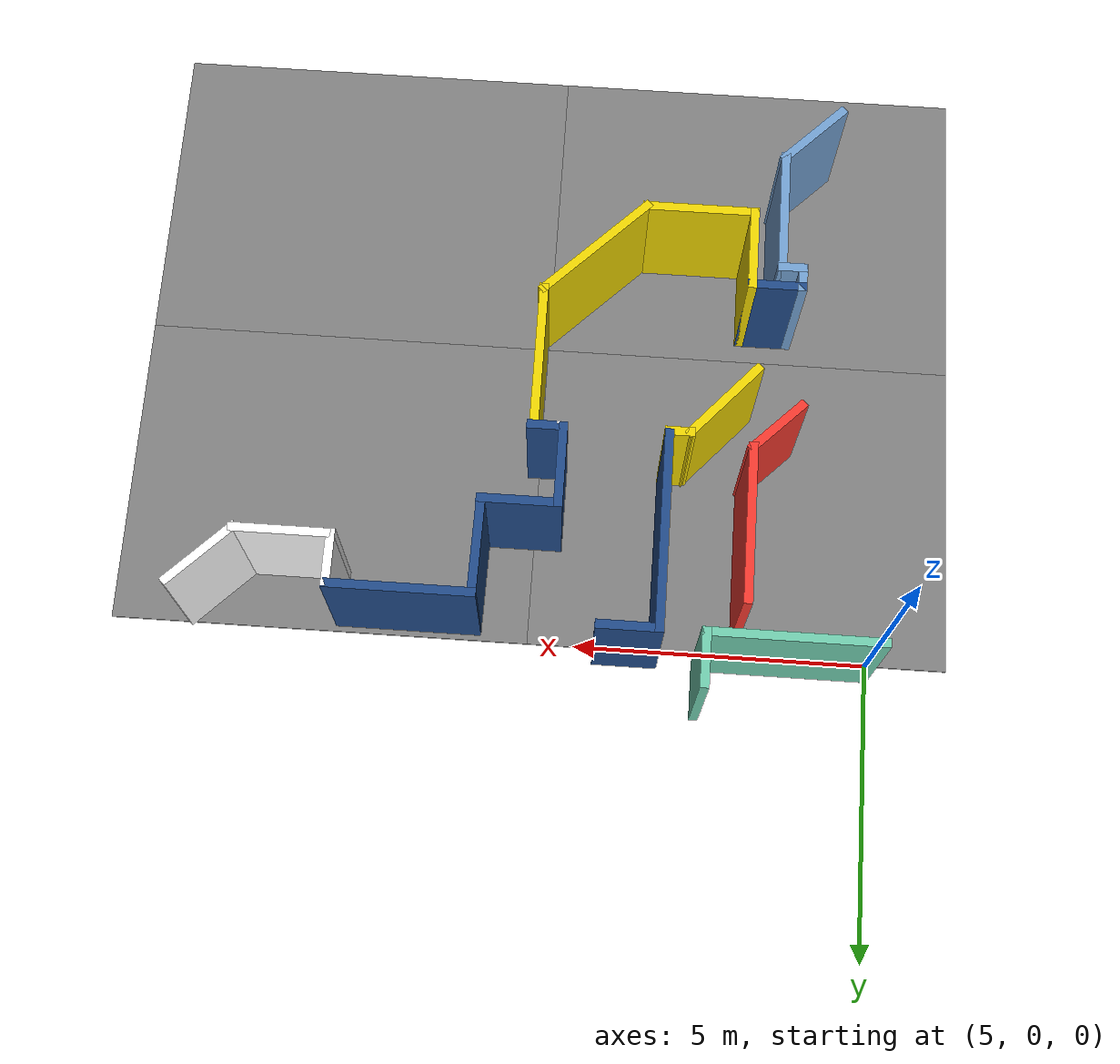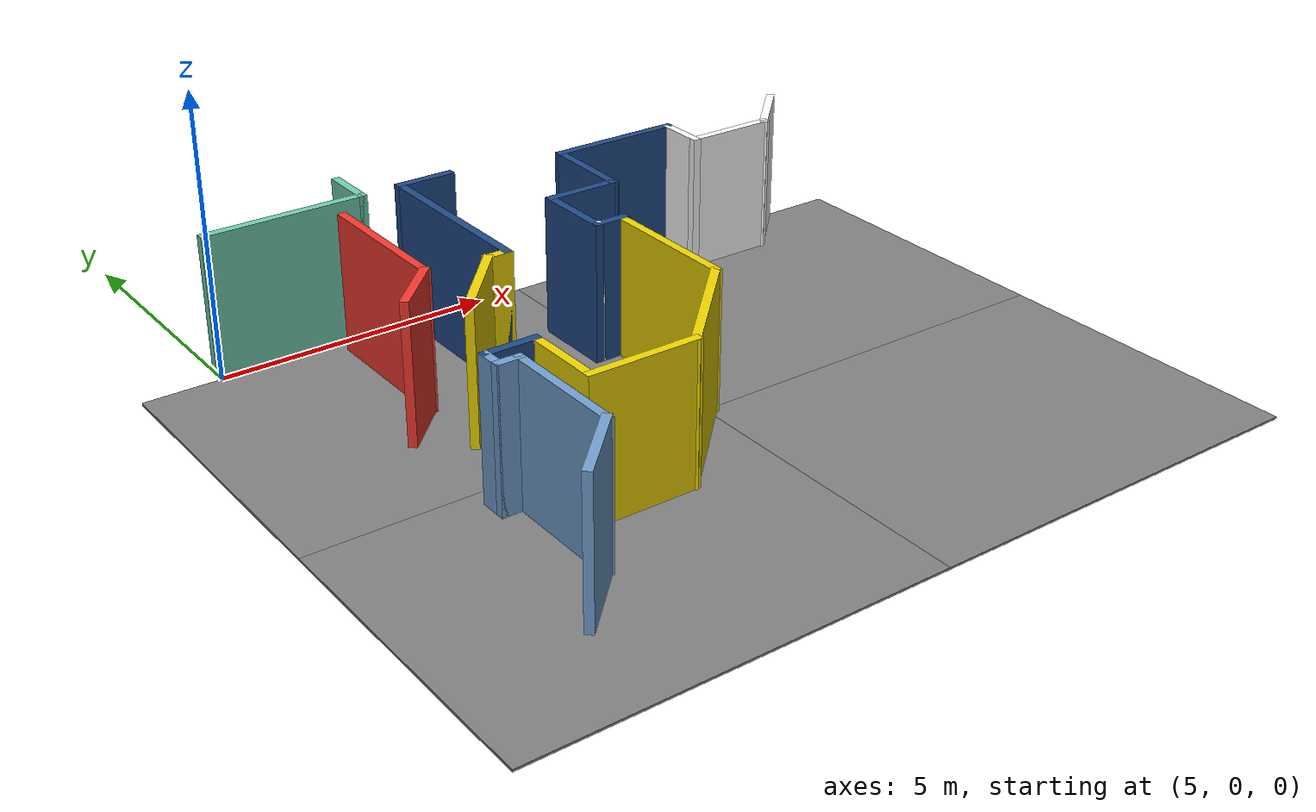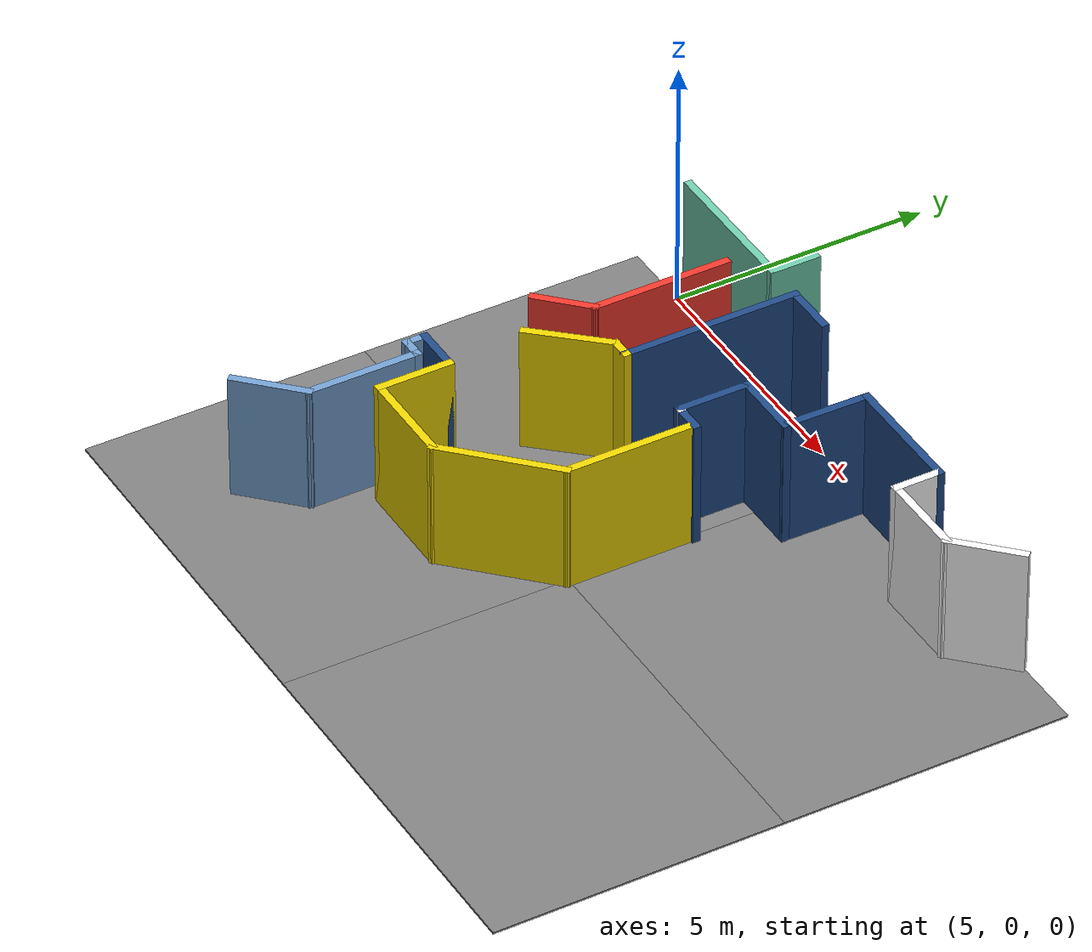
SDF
<sdf version="1.7">
 <world name="default">
  <model name="among_us_world">
   <pose>0.133216 -0.12311 0 0 -0 0</pose>
   <link name="Wall_130">
    <collision name="Wall_130_Collision">
     <geometry><box><size>3 0.15 2.5</size></box></geometry>
     <pose>0 0 1.25 0 -0 0</pose>
    </collision>
    <visual name="Wall_130_Visual">
     <pose>0 0 1.25 0 -0 0</pose>
     <geometry><box><size>3 0.15 2.5</size></box></geometry>
     <material>
      <ambient>0.435294 0.796078 0.67451 1</ambient>
      <diffuse>0.435294 0.796078 0.67451 1</diffuse>
      <specular>0.08 0.08 0.08 1</specular>
      <emissive>0 0 0 1</emissive>
      <pbr>
       <metal>
        <albedo_map>model://among_us_world/materials/textures/ceiling_tiled_111_203_172.jpg</albedo_map>
        <roughness>0.85</roughness>
        <metalness>0</metalness>
       </metal>
      </pbr>
     </material>
     <meta><layer>0</layer></meta>
    </visual>
    <pose>6.3307 0.332351 0 0 -0 0</pose>
   </link>
   <link name="Wall_131">
    <collision name="Wall_131_Collision">
     <geometry><box><size>1 0.15 2.5</size></box></geometry>
     <pose>0 0 1.25 0 -0 0</pose>
    </collision>
    <visual name="Wall_131_Visual">
     <pose>0 0 1.25 0 -0 0</pose>
     <geometry><box><size>1 0.15 2.5</size></box></geometry>
     <material>
      <ambient>0.435294 0.796078 0.67451 1</ambient>
      <diffuse>0.435294 0.796078 0.67451 1</diffuse>
      <specular>0.08 0.08 0.08 1</specular>
      <emissive>0 0 0 1</emissive>
      <pbr>
       <metal>
        <albedo_map>model://among_us_world/materials/textures/ceiling_tiled_111_203_172.jpg</albedo_map>
        <roughness>0.85</roughness>
        <metalness>0</metalness>
       </metal>
      </pbr>
     </material>
     <meta><layer>0</layer></meta>
    </visual>
    <pose>7.7557 0.757351 0 0 -0 1.5708</pose>
   </link>
   <link name="Wall_134">
    <collision name="Wall_134_Collision">
     <geometry><box><size>1.10593 0.15 2.5</size></box></geometry>
     <pose>0 0 1.25 0 -0 0</pose>
    </collision>
    <visual name="Wall_134_Visual">
     <pose>0 0 1.25 0 -0 0</pose>
     <geometry><box><size>1.10593 0.15 2.5</size></box></geometry>
     <material>
      <ambient>0.12549 0.290196 0.529412 1</ambient>
      <diffuse>0.12549 0.290196 0.529412 1</diffuse>
      <specular>0.08 0.08 0.08 1</specular>
      <emissive>0 0 0 1</emissive>
      <pbr>
       <metal>
        <albedo_map>model://asphalt_plane/materials/textures/tarmac.png</albedo_map>
        <roughness>0.85</roughness>
        <metalness>0</metalness>
       </metal>
      </pbr>
     </material>
     <meta><layer>0</layer></meta>
    </visual>
    <pose>8.98367 0.332351 0 0 -0 3.14159</pose>
   </link>
   <link name="Wall_135">
    <collision name="Wall_135_Collision">
     <geometry><box><size>3.5 0.15 2.5</size></box></geometry>
     <pose>0 0 1.25 0 -0 0</pose>
    </collision>
    <visual name="Wall_135_Visual">
     <pose>0 0 1.25 0 -0 0</pose>
     <geometry><box><size>3.5 0.15 2.5</size></box></geometry>
     <material>
      <ambient>0.12549 0.290196 0.529412 1</ambient>
      <diffuse>0.12549 0.290196 0.529412 1</diffuse>
      <specular>0.08 0.08 0.08 1</specular>
      <emissive>0 0 0 1</emissive>
      <pbr>
       <metal>
        <albedo_map>model://asphalt_plane/materials/textures/tarmac.png</albedo_map>
        <roughness>0.85</roughness>
        <metalness>0</metalness>
       </metal>
      </pbr>
     </material>
     <meta><layer>0</layer></meta>
    </visual>
    <pose>8.5057 -1.34265 0 0 -0 -1.5708</pose>
   </link>
   <link name="Wall_136">
    <collision name="Wall_136_Collision">
     <geometry><box><size>0.5 0.15 2.5</size></box></geometry>
     <pose>0 0 1.25 0 -0 0</pose>
    </collision>
    <visual name="Wall_136_Visual">
     <pose>0 0 1.25 0 -0 0</pose>
     <geometry><box><size>0.5 0.15 2.5</size></box></geometry>
     <material>
      <ambient>0.929412 0.831373 0 1</ambient>
      <diffuse>0.929412 0.831373 0 1</diffuse>
      <specular>0.08 0.08 0.08 1</specular>
      <emissive>0 0 0 1</emissive>
      <pbr>
       <metal>
        <albedo_map>model://among_us_world/materials/textures/ceiling_tiled_237_212_0.jpg</albedo_map>
        <roughness>0.85</roughness>
        <metalness>0</metalness>
       </metal>
      </pbr>
     </material>
     <meta><layer>0</layer></meta>
    </visual>
    <pose>8.3307 -3.01765 0 0 -0 3.14159</pose>
   </link>
   <link name="Wall_143">
    <collision name="Wall_143_Collision">
     <geometry><box><size>1.75259 0.15 2.5</size></box></geometry>
     <pose>0 0 1.25 0 -0 0</pose>
    </collision>
    <visual name="Wall_143_Visual">
     <pose>0 0 1.25 0 -0 0</pose>
     <geometry><box><size>1.75259 0.15 2.5</size></box></geometry>
     <material>
      <ambient>0.929412 0.831373 0 1</ambient>
      <diffuse>0.929412 0.831373 0 1</diffuse>
      <specular>0.08 0.08 0.08 1</specular>
      <emissive>0 0 0 1</emissive>
      <pbr>
       <metal>
        <albedo_map>model://among_us_world/materials/textures/ceiling_tiled_237_212_0.jpg</albedo_map>
        <roughness>0.85</roughness>
        <metalness>0</metalness>
       </metal>
      </pbr>
     </material>
     <meta><layer>0</layer></meta>
    </visual>
    <pose>7.62213 -3.61546 0 0 -0 -2.29947</pose>
   </link>
   <link name="Wall_192">
    <collision name="Wall_192_Collision">
     <geometry><box><size>1.25 0.15 2.5</size></box></geometry>
     <pose>0 0 1.25 0 -0 0</pose>
    </collision>
    <visual name="Wall_192_Visual">
     <pose>0 0 1.25 0 -0 0</pose>
     <geometry><box><size>1.25 0.15 2.5</size></box></geometry>
     <material>
      <ambient>0.95 0.22 0.18 1</ambient>
      <diffuse>0.95 0.22 0.18 1</diffuse>
      <specular>0.08 0.08 0.08 1</specular>
      <emissive>0 0 0 1</emissive>
      <pbr>
       <metal>
        <albedo_map>model://among_us_world/materials/textures/ceiling_tiled_164_0_0.jpg</albedo_map>
        <roughness>0.85</roughness>
        <metalness>0</metalness>
       </metal>
      </pbr>
     </material>
     <meta><layer>0</layer></meta>
    </visual>
    <pose>6.72747 -3.22436 0 0 -0 0.785398</pose>
   </link>
   <link name="Wall_193">
    <collision name="Wall_193_Collision">
     <geometry><box><size>2.75 0.15 2.5</size></box></geometry>
     <pose>0 0 1.25 0 -0 0</pose>
    </collision>
    <visual name="Wall_193_Visual">
     <pose>0 0 1.25 0 -0 0</pose>
     <geometry><box><size>2.75 0.15 2.5</size></box></geometry>
     <material>
      <ambient>0.95 0.22 0.18 1</ambient>
      <diffuse>0.95 0.22 0.18 1</diffuse>
      <specular>0.08 0.08 0.08 1</specular>
      <emissive>0 0 0 1</emissive>
      <pbr>
       <metal>
        <albedo_map>model://among_us_world/materials/textures/ceiling_tiled_164_0_0.jpg</albedo_map>
        <roughness>0.85</roughness>
        <metalness>0</metalness>
       </metal>
      </pbr>
     </material>
     <meta><layer>0</layer></meta>
    </visual>
    <pose>7.11638 -1.53545 0 0 -0 1.5708</pose>
   </link>
   <link name="Wall_22">
    <collision name="Wall_22_Collision">
     <geometry><box><size>1.5 0.15 2.5</size></box></geometry>
     <pose>0 0 1.25 0 -0 0</pose>
    </collision>
    <visual name="Wall_22_Visual">
     <pose>0 0 1.25 0 -0 0</pose>
     <geometry><box><size>1.5 0.15 2.5</size></box></geometry>
     <material>
      <ambient>1 1 1 1</ambient>
      <diffuse>1 1 1 1</diffuse>
      <specular>0.08 0.08 0.08 1</specular>
      <emissive>0 0 0 1</emissive>
      <pbr>
       <metal>
        <albedo_map>model://among_us_world/materials/textures/ceiling_tiled_46_52_54.jpg</albedo_map>
        <roughness>0.85</roughness>
        <metalness>0</metalness>
       </metal>
      </pbr>
     </material>
     <meta><layer>0</layer></meta>
    </visual>
    <pose>15.9665 -0.40005 0 0 -0 -2.35619</pose>
   </link>
   <link name="Wall_23">
    <collision name="Wall_23_Collision">
     <geometry><box><size>1.75 0.15 2.5</size></box></geometry>
     <pose>0 0 1.25 0 -0 0</pose>
    </collision>
    <visual name="Wall_23_Visual">
     <pose>0 0 1.25 0 -0 0</pose>
     <geometry><box><size>1.75 0.15 2.5</size></box></geometry>
     <material>
      <ambient>1 1 1 1</ambient>
      <diffuse>1 1 1 1</diffuse>
      <specular>0.08 0.08 0.08 1</specular>
      <emissive>0 0 0 1</emissive>
      <pbr>
       <metal>
        <albedo_map>model://among_us_world/materials/textures/ceiling_tiled_255_255_255.jpg</albedo_map>
        <roughness>0.85</roughness>
        <metalness>0</metalness>
       </metal>
      </pbr>
     </material>
     <meta><layer>0</layer></meta>
    </visual>
    <pose>14.6892 -0.877347 0 0 -0 3.14159</pose>
   </link>
   <link name="Wall_24">
    <collision name="Wall_24_Collision">
     <geometry><box><size>0.963748 0.15 2.5</size></box></geometry>
     <pose>0 0 1.25 0 -0 0</pose>
    </collision>
    <visual name="Wall_24_Visual">
     <pose>0 0 1.25 0 -0 0</pose>
     <geometry><box><size>0.963748 0.15 2.5</size></box></geometry>
     <material>
      <ambient>1 1 1 1</ambient>
      <diffuse>1 1 1 1</diffuse>
      <specular>0.08 0.08 0.08 1</specular>
      <emissive>0 0 0 1</emissive>
      <pbr>
       <metal>
        <albedo_map>model://among_us_world/materials/textures/ceiling_tiled_46_52_54.jpg</albedo_map>
        <roughness>0.85</roughness>
        <metalness>0</metalness>
       </metal>
      </pbr>
     </material>
     <meta><layer>0</layer></meta>
    </visual>
    <pose>13.8892 -0.470473 0 0 -0 1.5708</pose>
   </link>
   <link name="Wall_25">
    <collision name="Wall_25_Collision">
     <geometry><box><size>2.5 0.15 2.5</size></box></geometry>
     <pose>0 0 1.25 0 -0 0</pose>
    </collision>
    <visual name="Wall_25_Visual">
     <pose>0 0 1.25 0 -0 0</pose>
     <geometry><box><size>2.5 0.15 2.5</size></box></geometry>
     <material>
      <ambient>0.12549 0.290196 0.529412 1</ambient>
      <diffuse>0.12549 0.290196 0.529412 1</diffuse>
      <specular>0.08 0.08 0.08 1</specular>
      <emissive>0 0 0 1</emissive>
      <pbr>
       <metal>
        <albedo_map>model://asphalt_plane/materials/textures/tarmac.png</albedo_map>
        <roughness>0.85</roughness>
        <metalness>0</metalness>
       </metal>
      </pbr>
     </material>
     <meta><layer>0</layer></meta>
    </visual>
    <pose>12.7142 -0.045708 0 0 -0 3.14159</pose>
   </link>
   <link name="Wall_26">
    <collision name="Wall_26_Collision">
     <geometry><box><size>1.73416 0.15 2.5</size></box></geometry>
     <pose>0 0 1.25 0 -0 0</pose>
    </collision>
    <visual name="Wall_26_Visual">
     <pose>0 0 1.25 0 -0 0</pose>
     <geometry><box><size>1.73416 0.15 2.5</size></box></geometry>
     <material>
      <ambient>0.12549 0.290196 0.529412 1</ambient>
      <diffuse>0.12549 0.290196 0.529412 1</diffuse>
      <specular>0.08 0.08 0.08 1</specular>
      <emissive>0 0 0 1</emissive>
      <pbr>
       <metal>
        <albedo_map>model://asphalt_plane/materials/textures/tarmac.png</albedo_map>
        <roughness>0.85</roughness>
        <metalness>0</metalness>
       </metal>
      </pbr>
     </material>
     <meta><layer>0</layer></meta>
    </visual>
    <pose>11.5256 -0.855562 0 0 -0 -1.58788</pose>
   </link>
   <link name="Wall_27">
    <collision name="Wall_27_Collision">
     <geometry><box><size>1.40477 0.15 2.5</size></box></geometry>
     <pose>0 0 1.25 0 -0 0</pose>
    </collision>
    <visual name="Wall_27_Visual">
     <pose>0 0 1.25 0 -0 0</pose>
     <geometry><box><size>1.40477 0.15 2.5</size></box></geometry>
     <material>
      <ambient>0.12549 0.290196 0.529412 1</ambient>
      <diffuse>0.12549 0.290196 0.529412 1</diffuse>
      <specular>0.08 0.08 0.08 1</specular>
      <emissive>0 0 0 1</emissive>
      <pbr>
       <metal>
        <albedo_map>model://asphalt_plane/materials/textures/tarmac.png</albedo_map>
        <roughness>0.85</roughness>
        <metalness>0</metalness>
       </metal>
      </pbr>
     </material>
     <meta><layer>0</layer></meta>
    </visual>
    <pose>10.8914 -1.64752 0 0 -0 3.14159</pose>
   </link>
   <link name="Wall_73">
    <collision name="Wall_73_Collision">
     <geometry><box><size>1.5 0.15 2.5</size></box></geometry>
     <pose>0 0 1.25 0 -0 0</pose>
    </collision>
    <visual name="Wall_73_Visual">
     <pose>0 0 1.25 0 -0 0</pose>
     <geometry><box><size>1.5 0.15 2.5</size></box></geometry>
     <material>
      <ambient>0.447059 0.623529 0.811765 1</ambient>
      <diffuse>0.447059 0.623529 0.811765 1</diffuse>
      <specular>0.08 0.08 0.08 1</specular>
      <emissive>0 0 0 1</emissive>
      <pbr>
       <metal>
        <albedo_map>model://among_us_world/materials/textures/ceiling_tiled_114_159_207.jpg</albedo_map>
        <roughness>0.85</roughness>
        <metalness>0</metalness>
       </metal>
      </pbr>
     </material>
     <meta><layer>0</layer></meta>
    </visual>
    <pose>6.25753 -8.69102 0 0 -0 0.785398</pose>
   </link>
   <link name="Wall_76">
    <collision name="Wall_76_Collision">
     <geometry><box><size>2.25 0.15 2.5</size></box></geometry>
     <pose>0 0 1.25 0 -0 0</pose>
    </collision>
    <visual name="Wall_76_Visual">
     <pose>0 0 1.25 0 -0 0</pose>
     <geometry><box><size>2.25 0.15 2.5</size></box></geometry>
     <material>
      <ambient>0.447059 0.623529 0.811765 1</ambient>
      <diffuse>0.447059 0.623529 0.811765 1</diffuse>
      <specular>0.08 0.08 0.08 1</specular>
      <emissive>0 0 0 1</emissive>
      <pbr>
       <metal>
        <albedo_map>model://among_us_world/materials/textures/ceiling_tiled_114_159_207.jpg</albedo_map>
        <roughness>0.85</roughness>
        <metalness>0</metalness>
       </metal>
      </pbr>
     </material>
     <meta><layer>0</layer></meta>
    </visual>
    <pose>6.73483 -7.16372 0 0 -0 1.5708</pose>
   </link>
   <link name="Wall_77">
    <collision name="Wall_77_Collision">
     <geometry><box><size>0.5 0.15 2.5</size></box></geometry>
     <pose>0 0 1.25 0 -0 0</pose>
    </collision>
    <visual name="Wall_77_Visual">
     <pose>0 0 1.25 0 -0 0</pose>
     <geometry><box><size>0.5 0.15 2.5</size></box></geometry>
     <material>
      <ambient>0.447059 0.623529 0.811765 1</ambient>
      <diffuse>0.447059 0.623529 0.811765 1</diffuse>
      <specular>0.08 0.08 0.08 1</specular>
      <emissive>0 0 0 1</emissive>
      <pbr>
       <metal>
        <albedo_map>model://among_us_world/materials/textures/ceiling_tiled_114_159_207.jpg</albedo_map>
        <roughness>0.85</roughness>
        <metalness>0</metalness>
       </metal>
      </pbr>
     </material>
     <meta><layer>0</layer></meta>
    </visual>
    <pose>6.55983 -6.11372 0 0 -0 3.14159</pose>
   </link>
   <link name="Wall_78">
    <collision name="Wall_78_Collision">
     <geometry><box><size>0.5 0.15 2.5</size></box></geometry>
     <pose>0 0 1.25 0 -0 0</pose>
    </collision>
    <visual name="Wall_78_Visual">
     <pose>0 0 1.25 0 -0 0</pose>
     <geometry><box><size>0.5 0.15 2.5</size></box></geometry>
     <material>
      <ambient>0.447059 0.623529 0.811765 1</ambient>
      <diffuse>0.447059 0.623529 0.811765 1</diffuse>
      <specular>0.08 0.08 0.08 1</specular>
      <emissive>0 0 0 1</emissive>
      <pbr>
       <metal>
        <albedo_map>model://among_us_world/materials/textures/ceiling_tiled_114_159_207.jpg</albedo_map>
        <roughness>0.85</roughness>
        <metalness>0</metalness>
       </metal>
      </pbr>
     </material>
     <meta><layer>0</layer></meta>
    </visual>
    <pose>6.38483 -5.93872 0 0 -0 1.5708</pose>
   </link>
   <link name="Wall_79">
    <collision name="Wall_79_Collision">
     <geometry><box><size>1 0.15 2.5</size></box></geometry>
     <pose>0 0 1.25 0 -0 0</pose>
    </collision>
    <visual name="Wall_79_Visual">
     <pose>0 0 1.25 0 -0 0</pose>
     <geometry><box><size>1 0.15 2.5</size></box></geometry>
     <material>
      <ambient>0.12549 0.290196 0.529412 1</ambient>
      <diffuse>0.12549 0.290196 0.529412 1</diffuse>
      <specular>0.08 0.08 0.08 1</specular>
      <emissive>0 0 0 1</emissive>
      <pbr>
       <metal>
        <albedo_map>model://asphalt_plane/materials/textures/tarmac.png</albedo_map>
        <roughness>0.85</roughness>
        <metalness>0</metalness>
       </metal>
      </pbr>
     </material>
     <meta><layer>0</layer></meta>
    </visual>
    <pose>6.80983 -5.76372 0 0 -0 0</pose>
   </link>
   <link name="Wall_80">
    <collision name="Wall_80_Collision">
     <geometry><box><size>1.5 0.15 2.5</size></box></geometry>
     <pose>0 0 1.25 0 -0 0</pose>
    </collision>
    <visual name="Wall_80_Visual">
     <pose>0 0 1.25 0 -0 0</pose>
     <geometry><box><size>1.5 0.15 2.5</size></box></geometry>
     <material>
      <ambient>0.929412 0.831373 0 1</ambient>
      <diffuse>0.929412 0.831373 0 1</diffuse>
      <specular>0.08 0.08 0.08 1</specular>
      <emissive>0 0 0 1</emissive>
      <pbr>
       <metal>
        <albedo_map>model://among_us_world/materials/textures/ceiling_tiled_237_212_0.jpg</albedo_map>
        <roughness>0.85</roughness>
        <metalness>0</metalness>
       </metal>
      </pbr>
     </material>
     <meta><layer>0</layer></meta>
    </visual>
    <pose>7.23483 -6.43872 0 0 -0 -1.5708</pose>
   </link>
   <link name="Wall_82">
    <collision name="Wall_82_Collision">
     <geometry><box><size>2 0.15 2.5</size></box></geometry>
     <pose>0 0 1.25 0 -0 0</pose>
    </collision>
    <visual name="Wall_82_Visual">
     <pose>0 0 1.25 0 -0 0</pose>
     <geometry><box><size>2 0.15 2.5</size></box></geometry>
     <material>
      <ambient>0.929412 0.831373 0 1</ambient>
      <diffuse>0.929412 0.831373 0 1</diffuse>
      <specular>0.08 0.08 0.08 1</specular>
      <emissive>0 0 0 1</emissive>
      <pbr>
       <metal>
        <albedo_map>model://among_us_world/materials/textures/ceiling_tiled_237_212_0.jpg</albedo_map>
        <roughness>0.85</roughness>
        <metalness>0</metalness>
       </metal>
      </pbr>
     </material>
     <meta><layer>0</layer></meta>
    </visual>
    <pose>8.15983 -7.11372 0 0 -0 0</pose>
   </link>
   <link name="Wall_83">
    <collision name="Wall_83_Collision">
     <geometry><box><size>2.5 0.15 2.5</size></box></geometry>
     <pose>0 0 1.25 0 -0 0</pose>
    </collision>
    <visual name="Wall_83_Visual">
     <pose>0 0 1.25 0 -0 0</pose>
     <geometry><box><size>2.5 0.15 2.5</size></box></geometry>
     <material>
      <ambient>0.929412 0.831373 0 1</ambient>
      <diffuse>0.929412 0.831373 0 1</diffuse>
      <specular>0.08 0.08 0.08 1</specular>
      <emissive>0 0 0 1</emissive>
      <pbr>
       <metal>
        <albedo_map>model://among_us_world/materials/textures/ceiling_tiled_237_212_0.jpg</albedo_map>
        <roughness>0.85</roughness>
        <metalness>0</metalness>
       </metal>
      </pbr>
     </material>
     <meta><layer>0</layer></meta>
    </visual>
    <pose>9.91568 -6.28287 0 0 -0 0.785398</pose>
   </link>
   <link name="Wall_85">
    <collision name="Wall_85_Collision">
     <geometry><box><size>2.5 0.15 2.5</size></box></geometry>
     <pose>0 0 1.25 0 -0 0</pose>
    </collision>
    <visual name="Wall_85_Visual">
     <pose>0 0 1.25 0 -0 0</pose>
     <geometry><box><size>2.5 0.15 2.5</size></box></geometry>
     <material>
      <ambient>0.929412 0.831373 0 1</ambient>
      <diffuse>0.929412 0.831373 0 1</diffuse>
      <specular>0.08 0.08 0.08 1</specular>
      <emissive>0 0 0 1</emissive>
      <pbr>
       <metal>
        <albedo_map>model://among_us_world/materials/textures/ceiling_tiled_237_212_0.jpg</albedo_map>
        <roughness>0.85</roughness>
        <metalness>0</metalness>
       </metal>
      </pbr>
     </material>
     <meta><layer>0</layer></meta>
    </visual>
    <pose>10.7465 -4.27702 0 0 -0 1.5708</pose>
   </link>
   <link name="Wall_89">
    <collision name="Wall_89_Collision">
     <geometry><box><size>1.47984 0.15 2.5</size></box></geometry>
     <pose>0 0 1.25 0 -0 0</pose>
    </collision>
    <visual name="Wall_89_Visual">
     <pose>0 0 1.25 0 -0 0</pose>
     <geometry><box><size>1.47984 0.15 2.5</size></box></geometry>
     <material>
      <ambient>0.12549 0.290196 0.529412 1</ambient>
      <diffuse>0.12549 0.290196 0.529412 1</diffuse>
      <specular>0.08 0.08 0.08 1</specular>
      <emissive>0 0 0 1</emissive>
      <pbr>
       <metal>
        <albedo_map>model://asphalt_plane/materials/textures/tarmac.png</albedo_map>
        <roughness>0.85</roughness>
        <metalness>0</metalness>
       </metal>
      </pbr>
     </material>
     <meta><layer>0</layer></meta>
    </visual>
    <pose>10.2573 -2.31244 0 0 -0 -1.5708</pose>
   </link>
   <link name="Wall_90">
    <collision name="Wall_90_Collision">
     <geometry><box><size>0.15 0.15 2.5</size></box></geometry>
     <pose>0 0 1.25 0 -0 0</pose>
    </collision>
    <visual name="Wall_90_Visual">
     <pose>0 0 1.25 0 -0 0</pose>
     <geometry><box><size>0.15 0.15 2.5</size></box></geometry>
     <material>
      <ambient>1 1 1 1</ambient>
      <diffuse>1 1 1 1</diffuse>
      <specular>0.08 0.08 0.08 1</specular>
      <emissive>0 0 0 1</emissive>
      <pbr><metal><roughness>0.85</roughness><metalness>0</metalness></metal></pbr>
     </material>
     <meta><layer>0</layer></meta>
    </visual>
    <pose>10.2844 -2.97735 0 0 -0 0</pose>
   </link>
   <link name="Wall_93">
    <collision name="Wall_93_Collision">
     <geometry><box><size>0.654769 0.15 2.5</size></box></geometry>
     <pose>0 0 1.25 0 -0 0</pose>
    </collision>
    <visual name="Wall_93_Visual">
     <pose>0 0 1.25 0 -0 0</pose>
     <geometry><box><size>0.654769 0.15 2.5</size></box></geometry>
     <material>
      <ambient>0.12549 0.290196 0.529412 1</ambient>
      <diffuse>0.12549 0.290196 0.529412 1</diffuse>
      <specular>0.08 0.08 0.08 1</specular>
      <emissive>0 0 0 1</emissive>
      <pbr>
       <metal>
        <albedo_map>model://asphalt_plane/materials/textures/tarmac.png</albedo_map>
        <roughness>0.85</roughness>
        <metalness>0</metalness>
       </metal>
      </pbr>
     </material>
     <meta><layer>0</layer></meta>
    </visual>
    <pose>10.5368 -2.97735 0 0 -0 0</pose>
   </link>
   <static>1</static>
  </model>
  <model name="asphalt_tile_00_03">
   <static>1</static>
   <pose>7.200 -8.250 -0.020 0 -0 0</pose>
   <link name="link">
    <collision name="collision"><geometry><box><size>7.200 5.500 0.040</size></box></geometry></collision>
    <visual name="visual">
     <cast_shadows>0</cast_shadows>
     <geometry><box><size>7.200 5.500 0.040</size></box></geometry>
     <material>
      <ambient>0.5 0.5 0.5 1</ambient>
      <diffuse>0.5 0.5 0.5 1</diffuse>
      <specular>0.2 0.2 0.2 1</specular>
      <emissive>0 0 0 1</emissive>
      <pbr>
       <metal>
        <albedo_map>model://asphalt_plane/materials/textures/tarmac.png</albedo_map>
        <roughness>0.85</roughness>
        <metalness>0</metalness>
       </metal>
      </pbr>
     </material>
    </visual>
   </link>
  </model>
  <model name="asphalt_tile_00_04">
   <static>1</static>
   <pose>14.400 -8.250 -0.020 0 -0 0</pose>
   <link name="link">
    <collision name="collision"><geometry><box><size>7.200 5.500 0.040</size></box></geometry></collision>
    <visual name="visual">
     <cast_shadows>0</cast_shadows>
     <geometry><box><size>7.200 5.500 0.040</size></box></geometry>
     <material>
      <ambient>0.5 0.5 0.5 1</ambient>
      <diffuse>0.5 0.5 0.5 1</diffuse>
      <specular>0.2 0.2 0.2 1</specular>
      <emissive>0 0 0 1</emissive>
      <pbr>
       <metal>
        <albedo_map>model://asphalt_plane/materials/textures/tarmac.png</albedo_map>
        <roughness>0.85</roughness>
        <metalness>0</metalness>
       </metal>
      </pbr>
     </material>
    </visual>
   </link>
  </model>
  <model name="asphalt_tile_01_03">
   <static>1</static>
   <pose>7.200 -2.750 -0.020 0 -0 0</pose>
   <link name="link">
    <collision name="collision"><geometry><box><size>7.200 5.500 0.040</size></box></geometry></collision>
    <visual name="visual">
     <cast_shadows>0</cast_shadows>
     <geometry><box><size>7.200 5.500 0.040</size></box></geometry>
     <material>
      <ambient>0.5 0.5 0.5 1</ambient>
      <diffuse>0.5 0.5 0.5 1</diffuse>
      <specular>0.2 0.2 0.2 1</specular>
      <emissive>0 0 0 1</emissive>
      <pbr>
       <metal>
        <albedo_map>model://asphalt_plane/materials/textures/tarmac.png</albedo_map>
        <roughness>0.85</roughness>
        <metalness>0</metalness>
       </metal>
      </pbr>
     </material>
    </visual>
   </link>
  </model>
  <model name="asphalt_tile_01_04">
   <static>1</static>
   <pose>14.400 -2.750 -0.020 0 -0 0</pose>
   <link name="link">
    <collision name="collision"><geometry><box><size>7.200 5.500 0.040</size></box></geometry></collision>
    <visual name="visual">
     <cast_shadows>0</cast_shadows>
     <geometry><box><size>7.200 5.500 0.040</size></box></geometry>
     <material>
      <ambient>0.5 0.5 0.5 1</ambient>
      <diffuse>0.5 0.5 0.5 1</diffuse>
      <specular>0.2 0.2 0.2 1</specular>
      <emissive>0 0 0 1</emissive>
      <pbr>
       <metal>
        <albedo_map>model://asphalt_plane/materials/textures/tarmac.png</albedo_map>
        <roughness>0.85</roughness>
        <metalness>0</metalness>
       </metal>
      </pbr>
     </material>
    </visual>
   </link>
  </model>
 </world>
</sdf>
